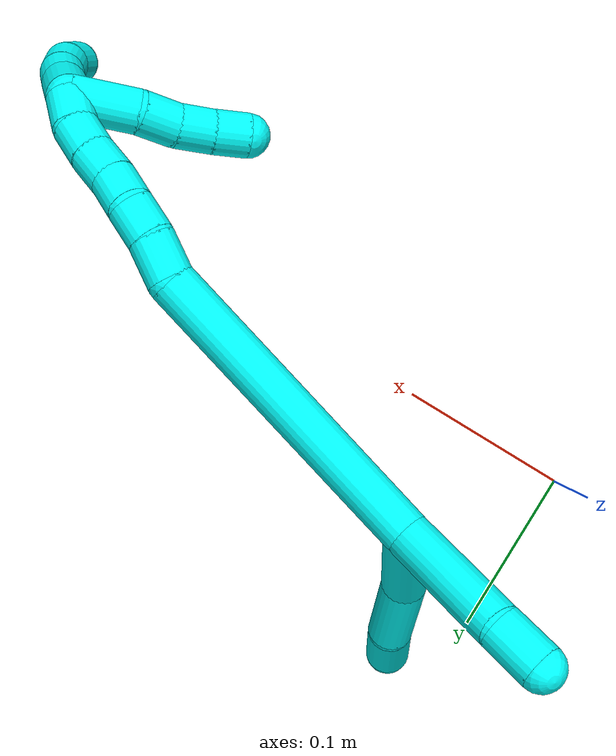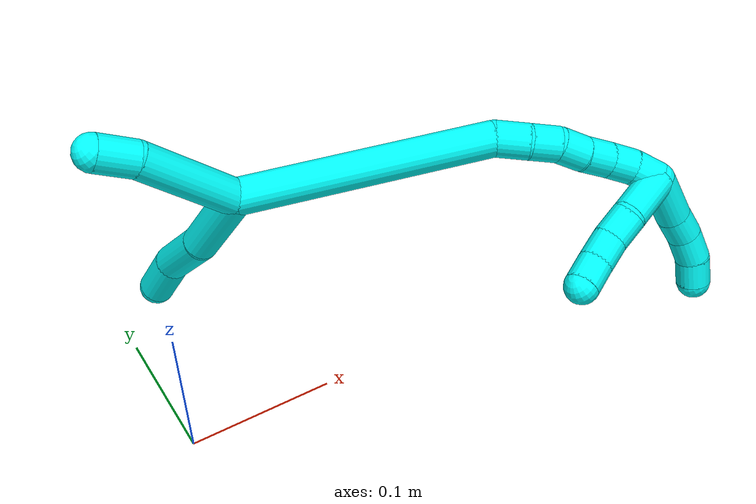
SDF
<sdf version="1.7">
 <world name="default">
  <model name="photoneo_s_sensor">
   <static>1</static>
   <pose>0 0 2 1.57079 1.57079 3.14159</pose>
   <link name="link">
    <inertial><mass>0.1</mass></inertial>
    <sensor name="sensor" type="depth">
     <update_rate>30</update_rate>
     <camera>
      <horizontal_fov>1.22</horizontal_fov>
      <image><width>1920</width><height>1200</height><format>B8G8R8</format></image>
      <clip><near>0.1</near><far>4</far></clip>
      <depth_camera><output>points</output></depth_camera>
     </camera>
     <plugin name="camera_plugin" filename="libgazebo_ros_depth_camera.so">
      <baseline>0.2</baseline>
      <alwaysOn>1</alwaysOn>
      <updateRate>0.0</updateRate>
      <cameraName>camera_ir</cameraName>
      <imageTopicName>/camera/color/image_raw</imageTopicName>
      <cameraInfoTopicName>/camera/color/camera_info</cameraInfoTopicName>
      <depthImageTopicName>/camera/depth/image_raw</depthImageTopicName>
      <depthImageCameraInfoTopicName>/camera/depth/camera_info</depthImageCameraInfoTopicName>
      <pointCloudTopicName>/camera/depth/points</pointCloudTopicName>
      <frameName>fr_optical</frameName>
      <pointCloudCutoff>0.1</pointCloudCutoff>
      <pointCloudCutoffMax>2.0</pointCloudCutoffMax>
      <distortionK1>0</distortionK1>
      <distortionK2>0</distortionK2>
      <distortionK3>0</distortionK3>
      <distortionT1>0</distortionT1>
      <distortionT2>0</distortionT2>
      <CxPrime>0</CxPrime>
      <Cx>0</Cx>
      <Cy>0</Cy>
      <focalLength>0</focalLength>
      <hackBaseline>0</hackBaseline>
     </plugin>
    </sensor>
   </link>
  </model>
  <model name="bin">
   <static>1</static>
   <link name="bottom">
    <collision name="collision-bottom">
     <pose>0 0 -0.01 0 -0 0</pose>
     <geometry><box><size>0.8 0.6 0.02</size></box></geometry>
     <surface>
      <friction><ode><mu>100</mu><mu2>100</mu2></ode></friction>
      <contact><collide_bitmask>65535</collide_bitmask></contact>
     </surface>
    </collision>
   </link>
   <link name="west_wall">
    <collision name="collision-west_wall">
     <pose>-0.41 0 0.1 0 -0 0</pose>
     <geometry><box><size>0.02 0.6 0.2</size></box></geometry>
     <surface>
      <friction><ode><mu>100</mu><mu2>100</mu2></ode></friction>
      <contact><collide_bitmask>65535</collide_bitmask></contact>
     </surface>
    </collision>
   </link>
   <link name="east_wall">
    <collision name="collision-east_wall">
     <pose>0.41 0 0.1 0 -0 0</pose>
     <geometry><box><size>0.02 0.6 0.2</size></box></geometry>
     <surface>
      <friction><ode><mu>100</mu><mu2>100</mu2></ode></friction>
      <contact><collide_bitmask>65535</collide_bitmask></contact>
     </surface>
    </collision>
   </link>
   <link name="south_wall">
    <collision name="collision-south_wall">
     <pose>0 -0.31 0.1 0 -0 0</pose>
     <geometry><box><size>0.8 0.02 0.2</size></box></geometry>
     <surface>
      <friction><ode><mu>100</mu><mu2>100</mu2></ode></friction>
      <contact><collide_bitmask>65535</collide_bitmask></contact>
     </surface>
    </collision>
   </link>
   <link name="north_wall">
    <collision name="collision-north_wall">
     <pose>0 0.31 0.1 0 -0 0</pose>
     <geometry><box><size>0.8 0.02 0.2</size></box></geometry>
     <surface>
      <friction><ode><mu>100</mu><mu2>100</mu2></ode></friction>
      <contact><collide_bitmask>65535</collide_bitmask></contact>
     </surface>
    </collision>
   </link>
  </model>
  <model name="3">
   <static>0</static>
   <link name="3">
    <collision name="collision-cylinder-e_1_2_8">
     <pose>-0.02649 0.004832 0.015158 -0.308621 -1.02995 0.175599</pose>
     <geometry><cylinder><radius>0.0125</radius><length>0.0618</length></cylinder></geometry>
     <surface>
      <friction><ode><mu>1.16</mu><mu2>1.16</mu2><slip1>0</slip1><slip2>0</slip2></ode></friction>
      <contact><ode><kp>1e+06</kp><kd>1</kd><max_vel>0</max_vel><min_depth>0.001</min_depth></ode></contact>
     </surface>
    </collision>
    <visual name="visual-cylinder-e_1_2_8">
     <pose>-0.02649 0.004832 0.015158 -0.308621 -1.02995 0.175599</pose>
     <geometry><cylinder><radius>0.0125</radius><length>0.0618</length></cylinder></geometry>
     <material><ambient>0.003922 1 0.996078 1</ambient></material>
    </visual>
    <collision name="collision-cylinder-e_2_8_9">
     <pose>-0.075794 0.008809 0.040535 0.083576 -1.14834 -0.054081</pose>
     <geometry><cylinder><radius>0.0125</radius><length>0.050025</length></cylinder></geometry>
     <surface>
      <friction><ode><mu>1.16</mu><mu2>1.16</mu2><slip1>0</slip1><slip2>0</slip2></ode></friction>
      <contact><ode><kp>1e+06</kp><kd>1</kd><max_vel>0</max_vel><min_depth>0.001</min_depth></ode></contact>
     </surface>
    </collision>
    <visual name="visual-cylinder-e_2_8_9">
     <pose>-0.075794 0.008809 0.040535 0.083576 -1.14834 -0.054081</pose>
     <geometry><cylinder><radius>0.0125</radius><length>0.050025</length></cylinder></geometry>
     <material><ambient>0.003922 1 0.996078 1</ambient></material>
    </visual>
    <collision name="collision-cylinder-e_3_9_6">
     <pose>-0.11461 0.010768 0.060769 -0.274084 -0.994351 0.149389</pose>
     <geometry><cylinder><radius>0.0125</radius><length>0.038174</length></cylinder></geometry>
     <surface>
      <friction><ode><mu>1.16</mu><mu2>1.16</mu2><slip1>0</slip1><slip2>0</slip2></ode></friction>
      <contact><ode><kp>1e+06</kp><kd>1</kd><max_vel>0</max_vel><min_depth>0.001</min_depth></ode></contact>
     </surface>
    </collision>
    <visual name="visual-cylinder-e_3_9_6">
     <pose>-0.11461 0.010768 0.060769 -0.274084 -0.994351 0.149389</pose>
     <geometry><cylinder><radius>0.0125</radius><length>0.038174</length></cylinder></geometry>
     <material><ambient>0.003922 1 0.996078 1</ambient></material>
    </visual>
    <collision name="collision-cylinder-e_1_2_10">
     <pose>-0.008195 0.007807 -0.03443 -2.91862 -0.228095 1.5937</pose>
     <geometry><cylinder><radius>0.0125</radius><length>0.072485</length></cylinder></geometry>
     <surface>
      <friction><ode><mu>1.16</mu><mu2>1.16</mu2><slip1>0</slip1><slip2>0</slip2></ode></friction>
      <contact><ode><kp>1e+06</kp><kd>1</kd><max_vel>0</max_vel><min_depth>0.001</min_depth></ode></contact>
     </surface>
    </collision>
    <visual name="visual-cylinder-e_1_2_10">
     <pose>-0.008195 0.007807 -0.03443 -2.91862 -0.228095 1.5937</pose>
     <geometry><cylinder><radius>0.0125</radius><length>0.072485</length></cylinder></geometry>
     <material><ambient>0.003922 1 0.996078 1</ambient></material>
    </visual>
    <collision name="collision-cylinder-e_2_10_5">
     <pose>-0.021966 0.020424 -0.08048 -2.74911 -0.41728 1.63373</pose>
     <geometry><cylinder><radius>0.0125</radius><length>0.027515</length></cylinder></geometry>
     <surface>
      <friction><ode><mu>1.16</mu><mu2>1.16</mu2><slip1>0</slip1><slip2>0</slip2></ode></friction>
      <contact><ode><kp>1e+06</kp><kd>1</kd><max_vel>0</max_vel><min_depth>0.001</min_depth></ode></contact>
     </surface>
    </collision>
    <visual name="visual-cylinder-e_2_10_5">
     <pose>-0.021966 0.020424 -0.08048 -2.74911 -0.41728 1.63373</pose>
     <geometry><cylinder><radius>0.0125</radius><length>0.027515</length></cylinder></geometry>
     <material><ambient>0.003922 1 0.996078 1</ambient></material>
    </visual>
    <collision name="collision-cylinder-e_1_2_11">
     <pose>0.063772 -0.042549 0.04245 0.78657 0.815006 0.354438</pose>
     <geometry><cylinder><radius>0.0125</radius><length>0.175263</length></cylinder></geometry>
     <surface>
      <friction><ode><mu>1.16</mu><mu2>1.16</mu2><slip1>0</slip1><slip2>0</slip2></ode></friction>
      <contact><ode><kp>1e+06</kp><kd>1</kd><max_vel>0</max_vel><min_depth>0.001</min_depth></ode></contact>
     </surface>
    </collision>
    <visual name="visual-cylinder-e_1_2_11">
     <pose>0.063772 -0.042549 0.04245 0.78657 0.815006 0.354438</pose>
     <geometry><cylinder><radius>0.0125</radius><length>0.175263</length></cylinder></geometry>
     <material><ambient>0.003922 1 0.996078 1</ambient></material>
    </visual>
    <collision name="collision-cylinder-e_2_11_12">
     <pose>0.136973 -0.087111 0.091952 0.277942 0.90974 0.136604</pose>
     <geometry><cylinder><radius>0.0125</radius><length>0.02389</length></cylinder></geometry>
     <surface>
      <friction><ode><mu>1.16</mu><mu2>1.16</mu2><slip1>0</slip1><slip2>0</slip2></ode></friction>
      <contact><ode><kp>1e+06</kp><kd>1</kd><max_vel>0</max_vel><min_depth>0.001</min_depth></ode></contact>
     </surface>
    </collision>
    <visual name="visual-cylinder-e_2_11_12">
     <pose>0.136973 -0.087111 0.091952 0.277942 0.90974 0.136604</pose>
     <geometry><cylinder><radius>0.0125</radius><length>0.02389</length></cylinder></geometry>
     <material><ambient>0.003922 1 0.996078 1</ambient></material>
    </visual>
    <collision name="collision-cylinder-e_3_12_13">
     <pose>0.153298 -0.091767 0.105981 0.36221 0.746083 0.143083</pose>
     <geometry><cylinder><radius>0.0125</radius><length>0.020319</length></cylinder></geometry>
     <surface>
      <friction><ode><mu>1.16</mu><mu2>1.16</mu2><slip1>0</slip1><slip2>0</slip2></ode></friction>
      <contact><ode><kp>1e+06</kp><kd>1</kd><max_vel>0</max_vel><min_depth>0.001</min_depth></ode></contact>
     </surface>
    </collision>
    <visual name="visual-cylinder-e_3_12_13">
     <pose>0.153298 -0.091767 0.105981 0.36221 0.746083 0.143083</pose>
     <geometry><cylinder><radius>0.0125</radius><length>0.020319</length></cylinder></geometry>
     <material><ambient>0.003922 1 0.996078 1</ambient></material>
    </visual>
    <collision name="collision-cylinder-e_4_13_14">
     <pose>0.165034 -0.095913 0.121682 0.170585 0.500294 0.043683</pose>
     <geometry><cylinder><radius>0.0125</radius><length>0.02018</length></cylinder></geometry>
     <surface>
      <friction><ode><mu>1.16</mu><mu2>1.16</mu2><slip1>0</slip1><slip2>0</slip2></ode></friction>
      <contact><ode><kp>1e+06</kp><kd>1</kd><max_vel>0</max_vel><min_depth>0.001</min_depth></ode></contact>
     </surface>
    </collision>
    <visual name="visual-cylinder-e_4_13_14">
     <pose>0.165034 -0.095913 0.121682 0.170585 0.500294 0.043683</pose>
     <geometry><cylinder><radius>0.0125</radius><length>0.02018</length></cylinder></geometry>
     <material><ambient>0.003922 1 0.996078 1</ambient></material>
    </visual>
    <collision name="collision-cylinder-e_5_14_15">
     <pose>0.174665 -0.100102 0.138929 0.305354 0.492134 0.077255</pose>
     <geometry><cylinder><radius>0.0125</radius><length>0.020277</length></cylinder></geometry>
     <surface>
      <friction><ode><mu>1.16</mu><mu2>1.16</mu2><slip1>0</slip1><slip2>0</slip2></ode></friction>
      <contact><ode><kp>1e+06</kp><kd>1</kd><max_vel>0</max_vel><min_depth>0.001</min_depth></ode></contact>
     </surface>
    </collision>
    <visual name="visual-cylinder-e_5_14_15">
     <pose>0.174665 -0.100102 0.138929 0.305354 0.492134 0.077255</pose>
     <geometry><cylinder><radius>0.0125</radius><length>0.020277</length></cylinder></geometry>
     <material><ambient>0.003922 1 0.996078 1</ambient></material>
    </visual>
    <collision name="collision-cylinder-e_6_15_16">
     <pose>0.184862 -0.104661 0.155681 0.22363 0.569704 0.065733</pose>
     <geometry><cylinder><radius>0.0125</radius><length>0.020047</length></cylinder></geometry>
     <surface>
      <friction><ode><mu>1.16</mu><mu2>1.16</mu2><slip1>0</slip1><slip2>0</slip2></ode></friction>
      <contact><ode><kp>1e+06</kp><kd>1</kd><max_vel>0</max_vel><min_depth>0.001</min_depth></ode></contact>
     </surface>
    </collision>
    <visual name="visual-cylinder-e_6_15_16">
     <pose>0.184862 -0.104661 0.155681 0.22363 0.569704 0.065733</pose>
     <geometry><cylinder><radius>0.0125</radius><length>0.020047</length></cylinder></geometry>
     <material><ambient>0.003922 1 0.996078 1</ambient></material>
    </visual>
    <collision name="collision-cylinder-e_7_16_1">
     <pose>0.196304 -0.105628 0.171848 -0.113427 0.647125 -0.038074</pose>
     <geometry><cylinder><radius>0.0125</radius><length>0.020023</length></cylinder></geometry>
     <surface>
      <friction><ode><mu>1.16</mu><mu2>1.16</mu2><slip1>0</slip1><slip2>0</slip2></ode></friction>
      <contact><ode><kp>1e+06</kp><kd>1</kd><max_vel>0</max_vel><min_depth>0.001</min_depth></ode></contact>
     </surface>
    </collision>
    <visual name="visual-cylinder-e_7_16_1">
     <pose>0.196304 -0.105628 0.171848 -0.113427 0.647125 -0.038074</pose>
     <geometry><cylinder><radius>0.0125</radius><length>0.020023</length></cylinder></geometry>
     <material><ambient>0.003922 1 0.996078 1</ambient></material>
    </visual>
    <collision name="collision-cylinder-e_1_1_17">
     <pose>0.196384 -0.087534 0.175109 -1.83633 -0.322625 0.41952</pose>
     <geometry><cylinder><radius>0.0125</radius><length>0.037568</length></cylinder></geometry>
     <surface>
      <friction><ode><mu>1.16</mu><mu2>1.16</mu2><slip1>0</slip1><slip2>0</slip2></ode></friction>
      <contact><ode><kp>1e+06</kp><kd>1</kd><max_vel>0</max_vel><min_depth>0.001</min_depth></ode></contact>
     </surface>
    </collision>
    <visual name="visual-cylinder-e_1_1_17">
     <pose>0.196384 -0.087534 0.175109 -1.83633 -0.322625 0.41952</pose>
     <geometry><cylinder><radius>0.0125</radius><length>0.037568</length></cylinder></geometry>
     <material><ambient>0.003922 1 0.996078 1</ambient></material>
    </visual>
    <collision name="collision-cylinder-e_2_17_18">
     <pose>0.1851 -0.060884 0.169811 -1.63647 -0.512142 0.545284</pose>
     <geometry><cylinder><radius>0.0125</radius><length>0.02175</length></cylinder></geometry>
     <surface>
      <friction><ode><mu>1.16</mu><mu2>1.16</mu2><slip1>0</slip1><slip2>0</slip2></ode></friction>
      <contact><ode><kp>1e+06</kp><kd>1</kd><max_vel>0</max_vel><min_depth>0.001</min_depth></ode></contact>
     </surface>
    </collision>
    <visual name="visual-cylinder-e_2_17_18">
     <pose>0.1851 -0.060884 0.169811 -1.63647 -0.512142 0.545284</pose>
     <geometry><cylinder><radius>0.0125</radius><length>0.02175</length></cylinder></geometry>
     <material><ambient>0.003922 1 0.996078 1</ambient></material>
    </visual>
    <collision name="collision-cylinder-e_3_18_19">
     <pose>0.176512 -0.041692 0.167996 -1.69275 -0.320781 0.361646</pose>
     <geometry><cylinder><radius>0.0125</radius><length>0.020666</length></cylinder></geometry>
     <surface>
      <friction><ode><mu>1.16</mu><mu2>1.16</mu2><slip1>0</slip1><slip2>0</slip2></ode></friction>
      <contact><ode><kp>1e+06</kp><kd>1</kd><max_vel>0</max_vel><min_depth>0.001</min_depth></ode></contact>
     </surface>
    </collision>
    <visual name="visual-cylinder-e_3_18_19">
     <pose>0.176512 -0.041692 0.167996 -1.69275 -0.320781 0.361646</pose>
     <geometry><cylinder><radius>0.0125</radius><length>0.020666</length></cylinder></geometry>
     <material><ambient>0.003922 1 0.996078 1</ambient></material>
    </visual>
    <collision name="collision-cylinder-e_4_19_4">
     <pose>0.170744 -0.022393 0.165272 -1.72959 -0.253553 0.296792</pose>
     <geometry><cylinder><radius>0.0125</radius><length>0.020016</length></cylinder></geometry>
     <surface>
      <friction><ode><mu>1.16</mu><mu2>1.16</mu2><slip1>0</slip1><slip2>0</slip2></ode></friction>
      <contact><ode><kp>1e+06</kp><kd>1</kd><max_vel>0</max_vel><min_depth>0.001</min_depth></ode></contact>
     </surface>
    </collision>
    <visual name="visual-cylinder-e_4_19_4">
     <pose>0.170744 -0.022393 0.165272 -1.72959 -0.253553 0.296792</pose>
     <geometry><cylinder><radius>0.0125</radius><length>0.020016</length></cylinder></geometry>
     <material><ambient>0.003922 1 0.996078 1</ambient></material>
    </visual>
    <collision name="collision-cylinder-e_1_1_20">
     <pose>0.20121 -0.102072 0.197947 -0.144995 -0.061452 0.004464</pose>
     <geometry><cylinder><radius>0.0125</radius><length>0.036782</length></cylinder></geometry>
     <surface>
      <friction><ode><mu>1.16</mu><mu2>1.16</mu2><slip1>0</slip1><slip2>0</slip2></ode></friction>
      <contact><ode><kp>1e+06</kp><kd>1</kd><max_vel>0</max_vel><min_depth>0.001</min_depth></ode></contact>
     </surface>
    </collision>
    <visual name="visual-cylinder-e_1_1_20">
     <pose>0.20121 -0.102072 0.197947 -0.144995 -0.061452 0.004464</pose>
     <geometry><cylinder><radius>0.0125</radius><length>0.036782</length></cylinder></geometry>
     <material><ambient>0.003922 1 0.996078 1</ambient></material>
    </visual>
    <collision name="collision-cylinder-e_2_20_21">
     <pose>0.200336 -0.097778 0.226345 -0.159072 0.024578 -0.001959</pose>
     <geometry><cylinder><radius>0.0125</radius><length>0.020736</length></cylinder></geometry>
     <surface>
      <friction><ode><mu>1.16</mu><mu2>1.16</mu2><slip1>0</slip1><slip2>0</slip2></ode></friction>
      <contact><ode><kp>1e+06</kp><kd>1</kd><max_vel>0</max_vel><min_depth>0.001</min_depth></ode></contact>
     </surface>
    </collision>
    <visual name="visual-cylinder-e_2_20_21">
     <pose>0.200336 -0.097778 0.226345 -0.159072 0.024578 -0.001959</pose>
     <geometry><cylinder><radius>0.0125</radius><length>0.020736</length></cylinder></geometry>
     <material><ambient>0.003922 1 0.996078 1</ambient></material>
    </visual>
    <collision name="collision-cylinder-e_3_21_22">
     <pose>0.200363 -0.092546 0.247071 -0.32968 -0.020511 0.003412</pose>
     <geometry><cylinder><radius>0.0125</radius><length>0.022182</length></cylinder></geometry>
     <surface>
      <friction><ode><mu>1.16</mu><mu2>1.16</mu2><slip1>0</slip1><slip2>0</slip2></ode></friction>
      <contact><ode><kp>1e+06</kp><kd>1</kd><max_vel>0</max_vel><min_depth>0.001</min_depth></ode></contact>
     </surface>
    </collision>
    <visual name="visual-cylinder-e_3_21_22">
     <pose>0.200363 -0.092546 0.247071 -0.32968 -0.020511 0.003412</pose>
     <geometry><cylinder><radius>0.0125</radius><length>0.022182</length></cylinder></geometry>
     <material><ambient>0.003922 1 0.996078 1</ambient></material>
    </visual>
    <collision name="collision-cylinder-e_4_22_3">
     <pose>0.197692 -0.084228 0.266205 -0.500651 -0.243164 0.062462</pose>
     <geometry><cylinder><radius>0.0125</radius><length>0.0203</length></cylinder></geometry>
     <surface>
      <friction><ode><mu>1.16</mu><mu2>1.16</mu2><slip1>0</slip1><slip2>0</slip2></ode></friction>
      <contact><ode><kp>1e+06</kp><kd>1</kd><max_vel>0</max_vel><min_depth>0.001</min_depth></ode></contact>
     </surface>
    </collision>
    <visual name="visual-cylinder-e_4_22_3">
     <pose>0.197692 -0.084228 0.266205 -0.500651 -0.243164 0.062462</pose>
     <geometry><cylinder><radius>0.0125</radius><length>0.0203</length></cylinder></geometry>
     <material><ambient>0.003922 1 0.996078 1</ambient></material>
    </visual>
    <collision name="collision-sphere-3">
     <pose>0.195248 -0.079499 0.274847 0 -0 0</pose>
     <geometry><sphere><radius>0.0125</radius></sphere></geometry>
     <surface>
      <friction><ode><mu>1.16</mu><mu2>1.16</mu2><slip1>0</slip1><slip2>0</slip2></ode></friction>
      <contact><ode><kp>1e+06</kp><kd>1</kd><max_vel>0</max_vel><min_depth>0.001</min_depth></ode></contact>
     </surface>
    </collision>
    <visual name="visual-sphere-3">
     <pose>0.195248 -0.079499 0.274847 0 -0 0</pose>
     <geometry><sphere><radius>0.0125</radius></sphere></geometry>
     <material><ambient>0.003922 1 0.996078 1</ambient></material>
    </visual>
    <collision name="collision-sphere-22">
     <pose>0.200136 -0.088956 0.257562 0 -0 0</pose>
     <geometry><sphere><radius>0.0125</radius></sphere></geometry>
     <surface>
      <friction><ode><mu>1.16</mu><mu2>1.16</mu2><slip1>0</slip1><slip2>0</slip2></ode></friction>
      <contact><ode><kp>1e+06</kp><kd>1</kd><max_vel>0</max_vel><min_depth>0.001</min_depth></ode></contact>
     </surface>
    </collision>
    <visual name="visual-sphere-22">
     <pose>0.200136 -0.088956 0.257562 0 -0 0</pose>
     <geometry><sphere><radius>0.0125</radius></sphere></geometry>
     <material><ambient>0.003922 1 0.996078 1</ambient></material>
    </visual>
    <collision name="collision-sphere-21">
     <pose>0.200591 -0.096136 0.236579 0 -0 0</pose>
     <geometry><sphere><radius>0.0125</radius></sphere></geometry>
     <surface>
      <friction><ode><mu>1.16</mu><mu2>1.16</mu2><slip1>0</slip1><slip2>0</slip2></ode></friction>
      <contact><ode><kp>1e+06</kp><kd>1</kd><max_vel>0</max_vel><min_depth>0.001</min_depth></ode></contact>
     </surface>
    </collision>
    <visual name="visual-sphere-21">
     <pose>0.200591 -0.096136 0.236579 0 -0 0</pose>
     <geometry><sphere><radius>0.0125</radius></sphere></geometry>
     <material><ambient>0.003922 1 0.996078 1</ambient></material>
    </visual>
    <collision name="collision-sphere-20">
     <pose>0.200081 -0.09942 0.216111 0 -0 0</pose>
     <geometry><sphere><radius>0.0125</radius></sphere></geometry>
     <surface>
      <friction><ode><mu>1.16</mu><mu2>1.16</mu2><slip1>0</slip1><slip2>0</slip2></ode></friction>
      <contact><ode><kp>1e+06</kp><kd>1</kd><max_vel>0</max_vel><min_depth>0.001</min_depth></ode></contact>
     </surface>
    </collision>
    <visual name="visual-sphere-20">
     <pose>0.200081 -0.09942 0.216111 0 -0 0</pose>
     <geometry><sphere><radius>0.0125</radius></sphere></geometry>
     <material><ambient>0.003922 1 0.996078 1</ambient></material>
    </visual>
    <collision name="collision-sphere-4">
     <pose>0.168233 -0.012826 0.16374 0 -0 0</pose>
     <geometry><sphere><radius>0.0125</radius></sphere></geometry>
     <surface>
      <friction><ode><mu>1.16</mu><mu2>1.16</mu2><slip1>0</slip1><slip2>0</slip2></ode></friction>
      <contact><ode><kp>1e+06</kp><kd>1</kd><max_vel>0</max_vel><min_depth>0.001</min_depth></ode></contact>
     </surface>
    </collision>
    <visual name="visual-sphere-4">
     <pose>0.168233 -0.012826 0.16374 0 -0 0</pose>
     <geometry><sphere><radius>0.0125</radius></sphere></geometry>
     <material><ambient>0.003922 1 0.996078 1</ambient></material>
    </visual>
    <collision name="collision-sphere-5">
     <pose>-0.027542 0.025234 -0.092101 0 -0 0</pose>
     <geometry><sphere><radius>0.0125</radius></sphere></geometry>
     <surface>
      <friction><ode><mu>1.16</mu><mu2>1.16</mu2><slip1>0</slip1><slip2>0</slip2></ode></friction>
      <contact><ode><kp>1e+06</kp><kd>1</kd><max_vel>0</max_vel><min_depth>0.001</min_depth></ode></contact>
     </surface>
    </collision>
    <visual name="visual-sphere-5">
     <pose>-0.027542 0.025234 -0.092101 0 -0 0</pose>
     <geometry><sphere><radius>0.0125</radius></sphere></geometry>
     <material><ambient>0.003922 1 0.996078 1</ambient></material>
    </visual>
    <collision name="collision-sphere-10">
     <pose>-0.01639 0.015613 -0.068859 0 -0 0</pose>
     <geometry><sphere><radius>0.0125</radius></sphere></geometry>
     <surface>
      <friction><ode><mu>1.16</mu><mu2>1.16</mu2><slip1>0</slip1><slip2>0</slip2></ode></friction>
      <contact><ode><kp>1e+06</kp><kd>1</kd><max_vel>0</max_vel><min_depth>0.001</min_depth></ode></contact>
     </surface>
    </collision>
    <visual name="visual-sphere-10">
     <pose>-0.01639 0.015613 -0.068859 0 -0 0</pose>
     <geometry><sphere><radius>0.0125</radius></sphere></geometry>
     <material><ambient>0.003922 1 0.996078 1</ambient></material>
    </visual>
    <collision name="collision-sphere-6">
     <pose>-0.130613 0.013584 0.070784 0 -0 0</pose>
     <geometry><sphere><radius>0.0125</radius></sphere></geometry>
     <surface>
      <friction><ode><mu>1.16</mu><mu2>1.16</mu2><slip1>0</slip1><slip2>0</slip2></ode></friction>
      <contact><ode><kp>1e+06</kp><kd>1</kd><max_vel>0</max_vel><min_depth>0.001</min_depth></ode></contact>
     </surface>
    </collision>
    <visual name="visual-sphere-6">
     <pose>-0.130613 0.013584 0.070784 0 -0 0</pose>
     <geometry><sphere><radius>0.0125</radius></sphere></geometry>
     <material><ambient>0.003922 1 0.996078 1</ambient></material>
    </visual>
    <collision name="collision-sphere-9">
     <pose>-0.098608 0.007953 0.050754 0 -0 0</pose>
     <geometry><sphere><radius>0.0125</radius></sphere></geometry>
     <surface>
      <friction><ode><mu>1.16</mu><mu2>1.16</mu2><slip1>0</slip1><slip2>0</slip2></ode></friction>
      <contact><ode><kp>1e+06</kp><kd>1</kd><max_vel>0</max_vel><min_depth>0.001</min_depth></ode></contact>
     </surface>
    </collision>
    <visual name="visual-sphere-9">
     <pose>-0.098608 0.007953 0.050754 0 -0 0</pose>
     <geometry><sphere><radius>0.0125</radius></sphere></geometry>
     <material><ambient>0.003922 1 0.996078 1</ambient></material>
    </visual>
    <collision name="collision-sphere-2">
     <geometry><sphere><radius>0.0125</radius></sphere></geometry>
     <surface>
      <friction><ode><mu>1.16</mu><mu2>1.16</mu2><slip1>0</slip1><slip2>0</slip2></ode></friction>
      <contact><ode><kp>1e+06</kp><kd>1</kd><max_vel>0</max_vel><min_depth>0.001</min_depth></ode></contact>
     </surface>
    </collision>
    <visual name="visual-sphere-2">
     <geometry><sphere><radius>0.0125</radius></sphere></geometry>
     <material><ambient>0.003922 1 0.996078 1</ambient></material>
    </visual>
    <collision name="collision-sphere-19">
     <pose>0.173254 -0.031959 0.166803 0 -0 0</pose>
     <geometry><sphere><radius>0.0125</radius></sphere></geometry>
     <surface>
      <friction><ode><mu>1.16</mu><mu2>1.16</mu2><slip1>0</slip1><slip2>0</slip2></ode></friction>
      <contact><ode><kp>1e+06</kp><kd>1</kd><max_vel>0</max_vel><min_depth>0.001</min_depth></ode></contact>
     </surface>
    </collision>
    <visual name="visual-sphere-19">
     <pose>0.173254 -0.031959 0.166803 0 -0 0</pose>
     <geometry><sphere><radius>0.0125</radius></sphere></geometry>
     <material><ambient>0.003922 1 0.996078 1</ambient></material>
    </visual>
    <collision name="collision-sphere-8">
     <pose>-0.05298 0.009665 0.030315 0 -0 0</pose>
     <geometry><sphere><radius>0.0125</radius></sphere></geometry>
     <surface>
      <friction><ode><mu>1.16</mu><mu2>1.16</mu2><slip1>0</slip1><slip2>0</slip2></ode></friction>
      <contact><ode><kp>1e+06</kp><kd>1</kd><max_vel>0</max_vel><min_depth>0.001</min_depth></ode></contact>
     </surface>
    </collision>
    <visual name="visual-sphere-8">
     <pose>-0.05298 0.009665 0.030315 0 -0 0</pose>
     <geometry><sphere><radius>0.0125</radius></sphere></geometry>
     <material><ambient>0.003922 1 0.996078 1</ambient></material>
    </visual>
    <collision name="collision-sphere-11">
     <pose>0.127544 -0.085099 0.084899 0 -0 0</pose>
     <geometry><sphere><radius>0.0125</radius></sphere></geometry>
     <surface>
      <friction><ode><mu>1.16</mu><mu2>1.16</mu2><slip1>0</slip1><slip2>0</slip2></ode></friction>
      <contact><ode><kp>1e+06</kp><kd>1</kd><max_vel>0</max_vel><min_depth>0.001</min_depth></ode></contact>
     </surface>
    </collision>
    <visual name="visual-sphere-11">
     <pose>0.127544 -0.085099 0.084899 0 -0 0</pose>
     <geometry><sphere><radius>0.0125</radius></sphere></geometry>
     <material><ambient>0.003922 1 0.996078 1</ambient></material>
    </visual>
    <collision name="collision-sphere-12">
     <pose>0.146402 -0.089123 0.099004 0 -0 0</pose>
     <geometry><sphere><radius>0.0125</radius></sphere></geometry>
     <surface>
      <friction><ode><mu>1.16</mu><mu2>1.16</mu2><slip1>0</slip1><slip2>0</slip2></ode></friction>
      <contact><ode><kp>1e+06</kp><kd>1</kd><max_vel>0</max_vel><min_depth>0.001</min_depth></ode></contact>
     </surface>
    </collision>
    <visual name="visual-sphere-12">
     <pose>0.146402 -0.089123 0.099004 0 -0 0</pose>
     <geometry><sphere><radius>0.0125</radius></sphere></geometry>
     <material><ambient>0.003922 1 0.996078 1</ambient></material>
    </visual>
    <collision name="collision-sphere-13">
     <pose>0.160194 -0.09441 0.112957 0 -0 0</pose>
     <geometry><sphere><radius>0.0125</radius></sphere></geometry>
     <surface>
      <friction><ode><mu>1.16</mu><mu2>1.16</mu2><slip1>0</slip1><slip2>0</slip2></ode></friction>
      <contact><ode><kp>1e+06</kp><kd>1</kd><max_vel>0</max_vel><min_depth>0.001</min_depth></ode></contact>
     </surface>
    </collision>
    <visual name="visual-sphere-13">
     <pose>0.160194 -0.09441 0.112957 0 -0 0</pose>
     <geometry><sphere><radius>0.0125</radius></sphere></geometry>
     <material><ambient>0.003922 1 0.996078 1</ambient></material>
    </visual>
    <collision name="collision-sphere-14">
     <pose>0.169874 -0.097416 0.130407 0 -0 0</pose>
     <geometry><sphere><radius>0.0125</radius></sphere></geometry>
     <surface>
      <friction><ode><mu>1.16</mu><mu2>1.16</mu2><slip1>0</slip1><slip2>0</slip2></ode></friction>
      <contact><ode><kp>1e+06</kp><kd>1</kd><max_vel>0</max_vel><min_depth>0.001</min_depth></ode></contact>
     </surface>
    </collision>
    <visual name="visual-sphere-14">
     <pose>0.169874 -0.097416 0.130407 0 -0 0</pose>
     <geometry><sphere><radius>0.0125</radius></sphere></geometry>
     <material><ambient>0.003922 1 0.996078 1</ambient></material>
    </visual>
    <collision name="collision-sphere-15">
     <pose>0.179455 -0.102789 0.147451 0 -0 0</pose>
     <geometry><sphere><radius>0.0125</radius></sphere></geometry>
     <surface>
      <friction><ode><mu>1.16</mu><mu2>1.16</mu2><slip1>0</slip1><slip2>0</slip2></ode></friction>
      <contact><ode><kp>1e+06</kp><kd>1</kd><max_vel>0</max_vel><min_depth>0.001</min_depth></ode></contact>
     </surface>
    </collision>
    <visual name="visual-sphere-15">
     <pose>0.179455 -0.102789 0.147451 0 -0 0</pose>
     <geometry><sphere><radius>0.0125</radius></sphere></geometry>
     <material><ambient>0.003922 1 0.996078 1</ambient></material>
    </visual>
    <collision name="collision-sphere-16">
     <pose>0.190268 -0.106532 0.163912 0 -0 0</pose>
     <geometry><sphere><radius>0.0125</radius></sphere></geometry>
     <surface>
      <friction><ode><mu>1.16</mu><mu2>1.16</mu2><slip1>0</slip1><slip2>0</slip2></ode></friction>
      <contact><ode><kp>1e+06</kp><kd>1</kd><max_vel>0</max_vel><min_depth>0.001</min_depth></ode></contact>
     </surface>
    </collision>
    <visual name="visual-sphere-16">
     <pose>0.190268 -0.106532 0.163912 0 -0 0</pose>
     <geometry><sphere><radius>0.0125</radius></sphere></geometry>
     <material><ambient>0.003922 1 0.996078 1</ambient></material>
    </visual>
    <collision name="collision-sphere-1">
     <pose>0.20234 -0.104724 0.179784 0 -0 0</pose>
     <geometry><sphere><radius>0.0125</radius></sphere></geometry>
     <surface>
      <friction><ode><mu>1.16</mu><mu2>1.16</mu2><slip1>0</slip1><slip2>0</slip2></ode></friction>
      <contact><ode><kp>1e+06</kp><kd>1</kd><max_vel>0</max_vel><min_depth>0.001</min_depth></ode></contact>
     </surface>
    </collision>
    <visual name="visual-sphere-1">
     <pose>0.20234 -0.104724 0.179784 0 -0 0</pose>
     <geometry><sphere><radius>0.0125</radius></sphere></geometry>
     <material><ambient>0.003922 1 0.996078 1</ambient></material>
    </visual>
    <collision name="collision-sphere-18">
     <pose>0.17977 -0.051425 0.169189 0 -0 0</pose>
     <geometry><sphere><radius>0.0125</radius></sphere></geometry>
     <surface>
      <friction><ode><mu>1.16</mu><mu2>1.16</mu2><slip1>0</slip1><slip2>0</slip2></ode></friction>
      <contact><ode><kp>1e+06</kp><kd>1</kd><max_vel>0</max_vel><min_depth>0.001</min_depth></ode></contact>
     </surface>
    </collision>
    <visual name="visual-sphere-18">
     <pose>0.17977 -0.051425 0.169189 0 -0 0</pose>
     <geometry><sphere><radius>0.0125</radius></sphere></geometry>
     <material><ambient>0.003922 1 0.996078 1</ambient></material>
    </visual>
    <collision name="collision-sphere-17">
     <pose>0.190429 -0.070344 0.170434 0 -0 0</pose>
     <geometry><sphere><radius>0.0125</radius></sphere></geometry>
     <surface>
      <friction><ode><mu>1.16</mu><mu2>1.16</mu2><slip1>0</slip1><slip2>0</slip2></ode></friction>
      <contact><ode><kp>1e+06</kp><kd>1</kd><max_vel>0</max_vel><min_depth>0.001</min_depth></ode></contact>
     </surface>
    </collision>
    <visual name="visual-sphere-17">
     <pose>0.190429 -0.070344 0.170434 0 -0 0</pose>
     <geometry><sphere><radius>0.0125</radius></sphere></geometry>
     <material><ambient>0.003922 1 0.996078 1</ambient></material>
    </visual>
    <inertial>
     <pose>0.079403 -0.043694 0.085479 0 -0 0</pose>
     <mass>0.75</mass>
     <inertia>
      <ixx>0.00049</ixx>
      <ixy>0</ixy>
      <ixz>0</ixz>
      <iyy>0.000601</iyy>
      <iyz>0</iyz>
      <izz>-7.2e-05</izz>
     </inertia>
    </inertial>
   </link>
   <pose>0.076005 0.064585 0.133892 -2.81551 -0.465025 -0.93478</pose>
  </model>
 </world>
</sdf>
